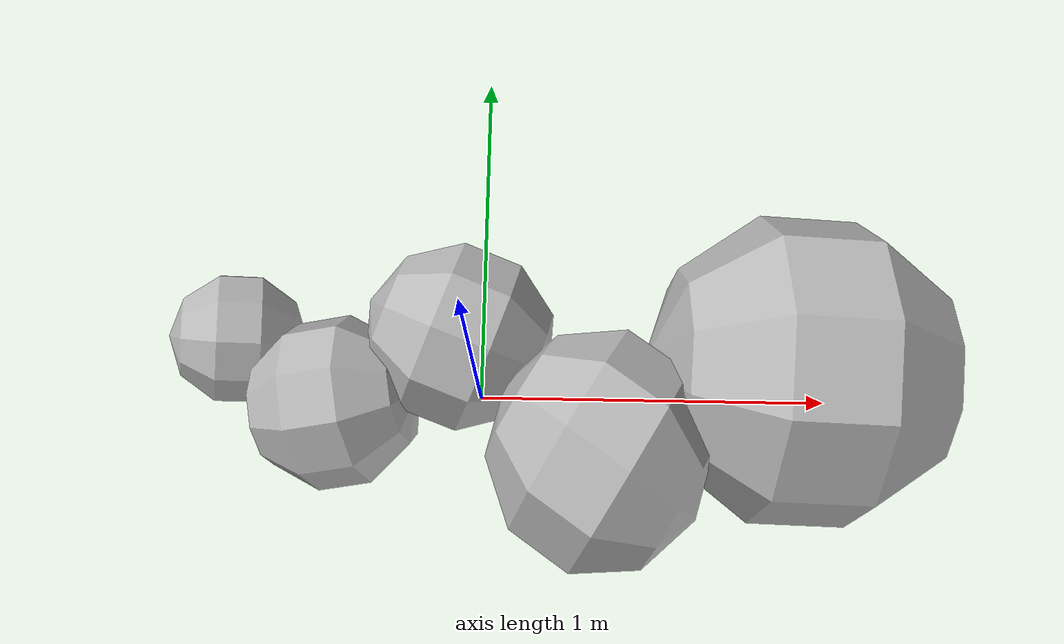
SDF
<?xml version='1.0'?>
<sdf version='1.6'>
    <model name='winsum_bushes1_2'>
        <link name='link_0'>
            <pose frame=''>0 0 0 0 -0 0</pose>
            <visual name='visual'>
                <pose frame=''>0 0 0 0 -0 0</pose>
                <geometry>
                    <mesh>
                        <uri>model://winsum_bushes1_2/meshes/bushes_1_2.dae</uri>
                        <scale>1 1 1</scale>
                    </mesh>
                </geometry>
            </visual>
            <collision name='collision'>
                <pose frame=''>0 0 0 0 -0 0</pose>
                <geometry>
                    <mesh>
                        <uri>model://winsum_bushes1_2/meshes/bushes_1_2.dae</uri>
                        <scale>1 1 1</scale>
                    </mesh>
                </geometry>
            </collision>
        </link>
    <static>1</static>
    <allow_auto_disable>1</allow_auto_disable>
    </model>
</sdf>
